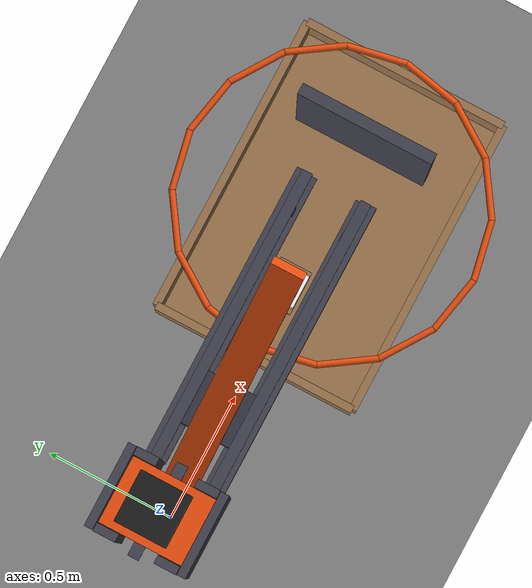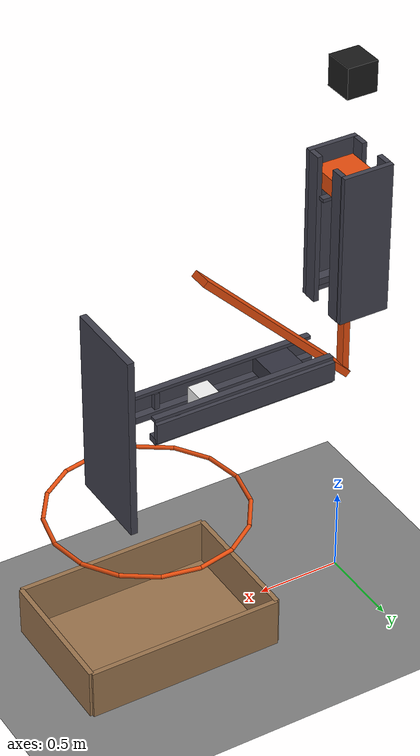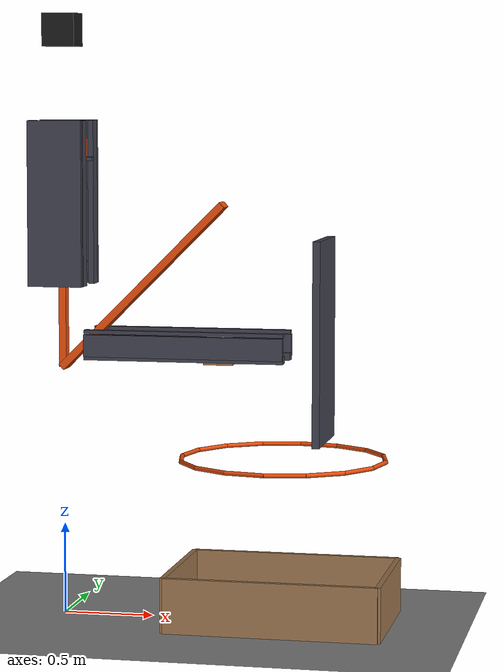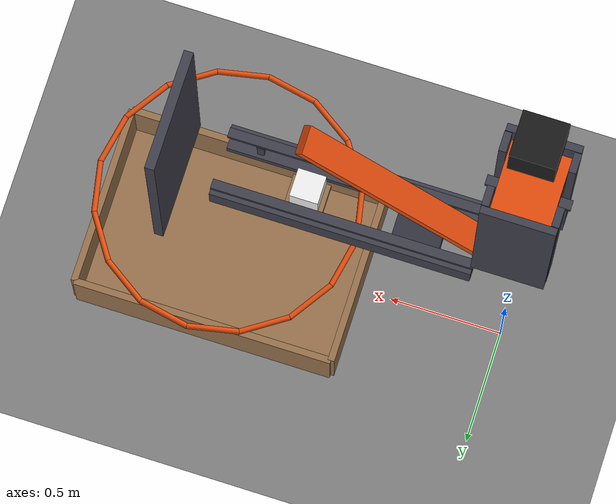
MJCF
<mujoco model="trigger_releases_wedge_onto_cart">
  <compiler angle="radian"/>
  <option timestep="0.002"/>
  <worldbody>
    <geom name="floor" type="plane" size="6 6 0.1" friction="0.8 0.005 0.002"/>
    <body name="wedge" pos="0 0 2.58">
      <freejoint/>
      <geom name="wedge" type="box" pos="0 0 0" size="0.12 0.15 0.05" mass="0.2" friction="0.02 0.005 0.0001" solref="0.01 1" rgba="0.9 0.3 0.05 1"/>
      <geom name="wedge neck" type="box" pos="0 0 -0.626" size="0.02 0.03 0.576" mass="0.1" friction="0.02 0.005 0.0001" solref="0.01 1" rgba="0.9 0.3 0.05 1"/>
      <geom name="driving face" type="box" pos="0.45 0 -0.751716" size="0.636396 0.06 0.02" euler="0 -0.785398 0" mass="0.2" friction="0.02 0.005 0.0001" solref="0.01 1" rgba="0.9 0.3 0.05 1"/>
    </body>
    <body name="wedge near left guide">
      <geom name="wedge near left guide" type="box" pos="-0.137 0.11 2.28" size="0.015 0.04 0.45" friction="0.01 0.005 0.0001" rgba="0.25 0.25 0.3 1"/>
    </body>
    <body name="wedge near right guide">
      <geom name="wedge near right guide" type="box" pos="-0.137 -0.11 2.28" size="0.015 0.04 0.45" friction="0.01 0.005 0.0001" rgba="0.25 0.25 0.3 1"/>
    </body>
    <body name="wedge far left guide">
      <geom name="wedge far left guide" type="box" pos="0.137 0.11 2.28" size="0.015 0.04 0.45" friction="0.01 0.005 0.0001" rgba="0.25 0.25 0.3 1"/>
    </body>
    <body name="wedge far right guide">
      <geom name="wedge far right guide" type="box" pos="0.137 -0.11 2.28" size="0.015 0.04 0.45" friction="0.01 0.005 0.0001" rgba="0.25 0.25 0.3 1"/>
    </body>
    <body name="wedge left guide">
      <geom name="wedge left guide" type="box" pos="0 0.167 2.28" size="0.15 0.015 0.45" friction="0.01 0.005 0.0001" rgba="0.25 0.25 0.3 1"/>
    </body>
    <body name="wedge right guide">
      <geom name="wedge right guide" type="box" pos="0 -0.167 2.28" size="0.15 0.015 0.45" friction="0.01 0.005 0.0001" rgba="0.25 0.25 0.3 1"/>
    </body>
    <body name="near release finger" pos="-0.17 0 2.52">
      <joint name="near_release_hinge" type="hinge" pos="0 0 0" axis="0 1 0" limited="true" range="0 1.48353" stiffness="1.2" springref="0" damping="0.03" armature="0.0001"/>
      <geom name="near release finger" type="box" pos="0.05 0 0" size="0.05 0.02 0.01" mass="0.02" friction="0.02 0.005 0.0001" solref="0.01 1" rgba="0.25 0.25 0.3 1"/>
    </body>
    <body name="far release finger" pos="0.17 0 2.52">
      <joint name="far_release_hinge" type="hinge" pos="0 0 0" axis="0 1 0" limited="true" range="-1.48353 0" stiffness="1.2" springref="0" damping="0.03" armature="0.0001"/>
      <geom name="far release finger" type="box" pos="-0.05 0 0" size="0.05 0.02 0.01" mass="0.02" friction="0.02 0.005 0.0001" solref="0.01 1" rgba="0.25 0.25 0.3 1"/>
    </body>
    <body name="wedge left stop">
      <geom name="wedge left stop" type="box" pos="0 0.12 1.93" size="0.12 0.03 0.02" solref="0.01 1" rgba="0.25 0.25 0.3 1"/>
    </body>
    <body name="wedge right stop">
      <geom name="wedge right stop" type="box" pos="0 -0.12 1.93" size="0.12 0.03 0.02" solref="0.01 1" rgba="0.25 0.25 0.3 1"/>
    </body>
    <body name="cart left track">
      <geom name="cart left track" type="box" pos="0.7 0.105 1.45" size="0.55 0.03 0.02" friction="0.2 0.005 0.0001" rgba="0.25 0.25 0.3 1"/>
    </body>
    <body name="cart right track">
      <geom name="cart right track" type="box" pos="0.7 -0.105 1.45" size="0.55 0.03 0.02" friction="0.2 0.005 0.0001" rgba="0.25 0.25 0.3 1"/>
    </body>
    <body name="cart left guide">
      <geom name="cart left guide" type="box" pos="0.7 0.137 1.51" size="0.55 0.015 0.06" friction="0.02 0.005 0.0001" rgba="0.25 0.25 0.3 1"/>
    </body>
    <body name="cart right guide">
      <geom name="cart right guide" type="box" pos="0.7 -0.137 1.51" size="0.55 0.015 0.06" friction="0.02 0.005 0.0001" rgba="0.25 0.25 0.3 1"/>
    </body>
    <body name="cart left keeper">
      <geom name="cart left keeper" type="box" pos="0.7 0.112 1.584" size="0.55 0.02 0.01" friction="0.02 0.005 0.0001" rgba="0.25 0.25 0.3 1"/>
    </body>
    <body name="cart right keeper">
      <geom name="cart right keeper" type="box" pos="0.7 -0.112 1.584" size="0.55 0.02 0.01" friction="0.02 0.005 0.0001" rgba="0.25 0.25 0.3 1"/>
    </body>
    <body name="cart left stop">
      <geom name="cart left stop" type="box" pos="1.11 0.11 1.52" size="0.015 0.02 0.05" solref="0.01 1" rgba="0.25 0.25 0.3 1"/>
    </body>
    <body name="cart right stop">
      <geom name="cart right stop" type="box" pos="1.11 -0.11 1.52" size="0.015 0.02 0.05" solref="0.01 1" rgba="0.25 0.25 0.3 1"/>
    </body>
    <body name="cart" pos="0.4 0 1.52">
      <freejoint/>
      <geom name="cart" type="box" pos="0 0 0" size="0.1 0.12 0.05" mass="4" friction="0.2 0.005 0.002" solref="0.01 1" rgba="0.2 0.2 0.25 1"/>
    </body>
    <body name="ledge">
      <geom name="ledge" type="box" pos="0.88 0 1.43" size="0.08 0.06 0.02" friction="0.08 0.005 0.0001" rgba="0.6 0.45 0.3 1"/>
    </body>
    <body name="block" pos="0.88 0 1.51">
      <freejoint/>
      <geom name="block" type="box" pos="0 0 0" size="0.06 0.06 0.06" mass="0.15" friction="0.25 0.01 0.004" solref="0.01 1" rgba="0.95 0.95 0.95 1"/>
    </body>
    <body name="hoop">
      <geom name="hoop_00" type="capsule" size="0.012" fromto="1.792 0 0.9 1.74922 0.215068 0.9" rgba="0.9 0.3 0.05 1"/>
      <geom name="hoop_01" type="capsule" size="0.012" fromto="1.74922 0.215068 0.9 1.62739 0.397394 0.9" rgba="0.9 0.3 0.05 1"/>
      <geom name="hoop_02" type="capsule" size="0.012" fromto="1.62739 0.397394 0.9 1.44507 0.51922 0.9" rgba="0.9 0.3 0.05 1"/>
      <geom name="hoop_03" type="capsule" size="0.012" fromto="1.44507 0.51922 0.9 1.23 0.562 0.9" rgba="0.9 0.3 0.05 1"/>
      <geom name="hoop_04" type="capsule" size="0.012" fromto="1.23 0.562 0.9 1.01493 0.51922 0.9" rgba="0.9 0.3 0.05 1"/>
      <geom name="hoop_05" type="capsule" size="0.012" fromto="1.01493 0.51922 0.9 0.832606 0.397394 0.9" rgba="0.9 0.3 0.05 1"/>
      <geom name="hoop_06" type="capsule" size="0.012" fromto="0.832606 0.397394 0.9 0.71078 0.215068 0.9" rgba="0.9 0.3 0.05 1"/>
      <geom name="hoop_07" type="capsule" size="0.012" fromto="0.71078 0.215068 0.9 0.668 6.88252e-17 0.9" rgba="0.9 0.3 0.05 1"/>
      <geom name="hoop_08" type="capsule" size="0.012" fromto="0.668 6.88252e-17 0.9 0.71078 -0.215068 0.9" rgba="0.9 0.3 0.05 1"/>
      <geom name="hoop_09" type="capsule" size="0.012" fromto="0.71078 -0.215068 0.9 0.832606 -0.397394 0.9" rgba="0.9 0.3 0.05 1"/>
      <geom name="hoop_10" type="capsule" size="0.012" fromto="0.832606 -0.397394 0.9 1.01493 -0.51922 0.9" rgba="0.9 0.3 0.05 1"/>
      <geom name="hoop_11" type="capsule" size="0.012" fromto="1.01493 -0.51922 0.9 1.23 -0.562 0.9" rgba="0.9 0.3 0.05 1"/>
      <geom name="hoop_12" type="capsule" size="0.012" fromto="1.23 -0.562 0.9 1.44507 -0.51922 0.9" rgba="0.9 0.3 0.05 1"/>
      <geom name="hoop_13" type="capsule" size="0.012" fromto="1.44507 -0.51922 0.9 1.62739 -0.397394 0.9" rgba="0.9 0.3 0.05 1"/>
      <geom name="hoop_14" type="capsule" size="0.012" fromto="1.62739 -0.397394 0.9 1.74922 -0.215068 0.9" rgba="0.9 0.3 0.05 1"/>
      <geom name="hoop_15" type="capsule" size="0.012" fromto="1.74922 -0.215068 0.9 1.792 -1.3765e-16 0.9" rgba="0.9 0.3 0.05 1"/>
    </body>
    <body name="box">
      <geom name="box_base" type="box" pos="1.23 0 0.015" size="0.58 0.4 0.015" friction="0.8 0.01 0.004" solref="0.01 1" rgba="0.6 0.45 0.3 1"/>
      <geom name="box_near_wall" type="box" pos="0.65 0 0.15" size="0.015 0.4 0.15" friction="0.8 0.01 0.004" solref="0.01 1" rgba="0.6 0.45 0.3 1"/>
      <geom name="box_far_wall" type="box" pos="1.81 0 0.15" size="0.015 0.4 0.15" friction="0.8 0.01 0.004" solref="0.01 1" rgba="0.6 0.45 0.3 1"/>
      <geom name="box_left_wall" type="box" pos="1.23 0.4 0.15" size="0.58 0.015 0.15" friction="0.8 0.01 0.004" solref="0.01 1" rgba="0.6 0.45 0.3 1"/>
      <geom name="box_right_wall" type="box" pos="1.23 -0.4 0.15" size="0.58 0.015 0.15" friction="0.8 0.01 0.004" solref="0.01 1" rgba="0.6 0.45 0.3 1"/>
    </body>
    <body name="payload backstop">
      <geom name="payload backstop" type="box" pos="1.45 0 1.55" size="0.02 0.25 0.55" friction="0.05 0.005 0.0001" solref="0.01 1" rgba="0.25 0.25 0.3 1"/>
    </body>
    <body name="trigger" pos="0 0 3.22">
      <freejoint/>
      <geom name="trigger" type="box" pos="0 0 0" size="0.09 0.09 0.09" mass="6" friction="0.3 0.005 0.0001" solref="0.01 1" rgba="0.1 0.1 0.1 1"/>
    </body>
  </worldbody>
  <keyframe>
    <key name="start" qpos="0 0 2.58 1 0 0 0 0 0 0.4 0 1.52 1 0 0 0 0.88 0 1.51 1 0 0 0 0 0 3.22 1 0 0 0" qvel="0 0 0 0 0 0 0 0 0 0 0 0 0 0 0 0 0 0 0 0 0 0 0 0 0 0"/>
  </keyframe>
</mujoco>
